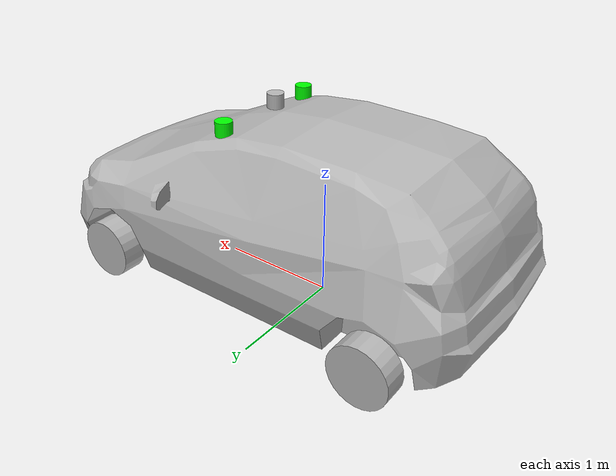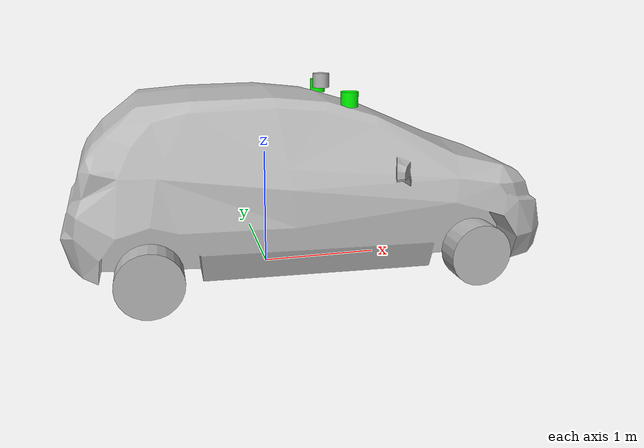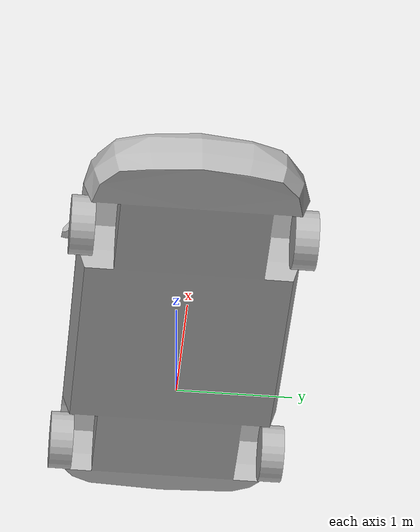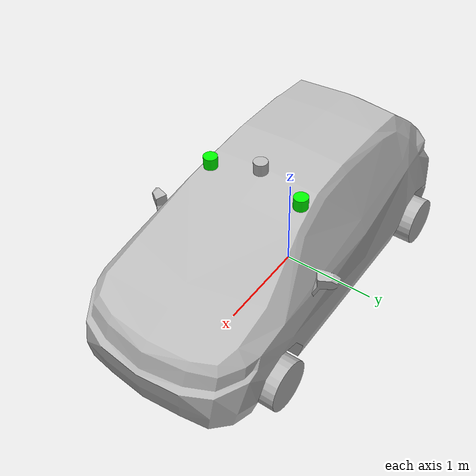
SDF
<?xml version='1.0'?>
<sdf version='1.6'>

<model name="ADcar_model">

	<static>false</static>

	<!-- Load collision properties of ad-car using ad-car mesh -->

  <link name="chassis">
      <collision name="collision">
        <pose>0 0 0.01 0 0 1.5707</pose>
        <geometry>
          <mesh>
            <scale>0.0254 0.0254 0.0254</scale>
            <uri>model://ADcar_model/meshes/hatchback.obj</uri>
          </mesh>
        </geometry>
      </collision>
      <visual name="visual">
        <pose>0 0 0.01 0 0 1.5707</pose>
        <geometry>
          <mesh>
            <scale>0.0254 0.0254 0.0254</scale>
            <uri>model://ADcar_model/meshes/hatchback.obj</uri>
          </mesh>
        </geometry>
      </visual>

      <inertial>
        <mass>1200.0</mass> <!-- in kilograms, adjust for a real car -->
        <inertia>
          <ixx>400.0</ixx>
          <iyy>1200.0</iyy>
          <izz>1400.0</izz>
          <ixy>0.0</ixy>
          <ixz>0.0</ixz>
          <iyz>0.0</iyz>
        </inertia>
      </inertial>

    </link>

	<!--  FRONT right wheel  -->

	<link name="front_right_wheel">
            <pose>1.55 -0.93 0.3 0 1.5707 1.5707</pose>

             <collision name="collision">
          <geometry>
            <cylinder>
              <radius>.25</radius>
              <length>.2</length>
            </cylinder>
          </geometry>

          <surface>
            <friction>
              <ode>
                <mu>1.1</mu>
                <mu2>1.1</mu2>
                <slip1>0.0</slip1>
                <slip2>0.0</slip2>
              </ode>
            </friction>
            <contact>
              <ode>
                <min_depth>0.001</min_depth>
                <kp>1e9</kp>
              </ode>
            </contact>
          </surface>

        </collision>
        <visual name="visual">
          <geometry>
            <cylinder>
              <radius>.25</radius>
              <length>.2</length>
            </cylinder>
          </geometry>
        </visual>
        <inertial>
          <mass>20.0</mass> <!-- wheels are lighter -->
          <inertia>
            <ixx>0.6</ixx>
            <iyy>0.6</iyy>
            <izz>0.6</izz>
          </inertia>
        </inertial>
      </link>

	<!-- FRONT left wheel  -->

	<link name="front_left_wheel">
        <pose>1.55 0.93 0.3 0 1.5707 1.5707</pose>
          <collision name="collision">
          <geometry>
            <cylinder>
              <radius>.25</radius>
              <length>.2</length>
            </cylinder>
          </geometry>

          <surface>
            <friction>
              <ode>
                <mu>1.1</mu>
                <mu2>1.1</mu2>
                <slip1>0.0</slip1>
                <slip2>0.0</slip2>
              </ode>
            </friction>
            <contact>
              <ode>
                <min_depth>0.001</min_depth>
                <kp>1e9</kp>
              </ode>
            </contact>
          </surface>

        </collision>
        <visual name="visual">
          <geometry>
            <cylinder>
              <radius>.25</radius>
              <length>.2</length>
            </cylinder>
          </geometry>
        </visual>
        <inertial>
          <mass>20.0</mass> <!-- wheels are lighter -->
          <inertia>
            <ixx>0.6</ixx>
            <iyy>0.6</iyy>
            <izz>0.6</izz>
          </inertia>
        </inertial>

      </link>

      <link name="front_left_wheel_steer">
        <pose>1.55 0.93 0.3 0 0 0</pose>
        <inertial>
          <mass>1.0</mass>
          <inertia><ixx>0.01</ixx><iyy>0.01</iyy><izz>0.01</izz></inertia>
        </inertial>
      </link>

      <link name="front_right_wheel_steer">
        <pose>1.55 -0.93 0.3 0 0 0</pose>
        <inertial>
          <mass>1.0</mass>
          <inertia><ixx>0.01</ixx><iyy>0.01</iyy><izz>0.01</izz></inertia>
        </inertial>
      </link>

	<!-- REAR Left wheel  -->

	<link name="rear_left_wheel">
        <pose>-1.0 0.93 0.3 0 1.5707 1.5707</pose>
        <collision name="collision">
          <geometry>
            <cylinder>
              <radius>.25</radius>
              <length>.2</length>
            </cylinder>
          </geometry>

          <surface>
            <friction>
              <ode>
                <mu>2.1</mu>
                <mu2>2.1</mu2>
                <slip1>0.0</slip1>
                <slip2>0.0</slip2>
              </ode>
            </friction>
            <contact>
              <ode>
                <min_depth>0.001</min_depth>
                <kp>1e9</kp>
              </ode>
            </contact>
          </surface>

        </collision>
        <visual name="visual">
          <geometry>
            <cylinder>
              <radius>.25</radius>
              <length>.2</length>
            </cylinder>
          </geometry>
        </visual>
        <inertial>
          <mass>20.0</mass> <!-- wheels are lighter -->
          <inertia>
            <ixx>0.6</ixx>
            <iyy>0.6</iyy>
            <izz>0.6</izz>
          </inertia>
        </inertial>
      </link>

	<!-- REAR Right wheel  -->

	<link name="rear_right_wheel">
      <pose>-1.0 -0.93 0.3 0 1.5707 1.5707</pose>
        <collision name="collision">
          <geometry>
            <cylinder>
              <radius>.25</radius>
              <length>.2</length>
            </cylinder>
          </geometry>

          <surface>
            <friction>
              <ode>
                <mu>2.1</mu>
                <mu2>2.1</mu2>
                <slip1>0.0</slip1>
                <slip2>0.0</slip2>
              </ode>
            </friction>
            <contact>
              <ode>
                <min_depth>0.001</min_depth>
                <kp>1e9</kp>

              </ode>
            </contact>
          </surface>
        </collision>

        <visual name="visual">
          <geometry>
            <cylinder>
              <radius>.25</radius>
              <length>.2</length>
            </cylinder>
          </geometry>
        </visual>
        <inertial>
          <mass>20.0</mass> <!-- wheels are lighter -->
          <inertia>
              <ixx>0.6</ixx>
              <iyy>0.6</iyy>
              <izz>0.6</izz>
            </inertia>
        </inertial>
      </link>

	<!-- REAR right and left wheel joints  -->

      <joint type="revolute" name="rear_left_wheel_joint">
       <pose>0 0 0 0 0 0</pose>
        <child>rear_left_wheel</child>
        <parent>chassis</parent>
        <axis>
          <xyz>0 0 1</xyz>
        </axis>
      </joint>

      <joint type="revolute" name="rear_right_wheel_joint">
        <pose>0 0 0 0 0 0</pose>
        <child>rear_right_wheel</child>
        <parent>chassis</parent>
        <axis>
          <xyz>0 0 1</xyz>
        </axis>
      </joint>

<!-- FRONT LEFT WHEEL -->

<!-- Steering joint (same axis as your universal joint axis) -->
<joint name="front_left_steer_joint" type="revolute">
  <parent>chassis</parent>
  <child>front_left_wheel_steer</child>
  <pose>0 0 0 0 0 0</pose>
  <axis>
    <xyz>0 0 1</xyz>  <!-- Keep same steering axis as before -->
    <limit>
      <lower>-0.5</lower>
      <upper>0.5</upper>
    </limit>
  </axis>
</joint>

<!-- Wheel rotation joint (same axis as your universal joint axis2) -->
<joint name="front_left_wheel_joint" type="revolute">
  <parent>front_left_wheel_steer</parent>
  <child>front_left_wheel</child>
  <pose>0 0 0 0 0 0</pose>
  <axis>
    <xyz>0 0 1</xyz>  <!-- Keep same rolling axis as before -->
    <dynamics>
      <friction>0.0474092253</friction>
    </dynamics>
  </axis>
</joint>

<!-- FRONT RIGHT WHEEL -->

<!-- Steering joint -->
<joint name="front_right_steer_joint" type="revolute">
  <parent>chassis</parent>
  <child>front_right_wheel_steer</child>
  <pose>0 0 0 0 0 0</pose>
  <axis>
    <xyz>0 0 1</xyz>  <!-- Keep same steering axis -->
    <limit>
      <lower>-0.5</lower>
      <upper>0.5</upper>
    </limit>
  </axis>
</joint>

<!-- Wheel rotation joint -->
<joint name="front_right_wheel_joint" type="revolute">
  <parent>front_right_wheel_steer</parent>
  <child>front_right_wheel</child>
  <pose>0 0 0 0 0 0</pose>
  <axis>
    <xyz>0 0 1</xyz>  <!-- Keep same rolling axis -->
    <dynamics>
      <friction>0.0474092253</friction>
    </dynamics>
  </axis>
</joint>

 	<!-- PLUGIN for Ackermann steering and drive
Manual publish address for troubleshooting:
ros2 topic pub /ecart/cmd_vel geometry_msgs/msg/Twist '{linear: {x: 1.0}, angular: {z: 0.4}}' -1

-->

	<plugin name='ackermann_drive' filename='libgazebo_ros_ackermann_drive.so'>

        <ros>
          <namespace>ecart</namespace>
          <remapping>cmd_vel:=cmd_vel</remapping>
          <remapping>odom:=odom</remapping>
          <remapping>distance:=distance</remapping>
        </ros>
        <update_rate>25.0</update_rate>
        <!-- wheels -->
        <rear_left_joint>rear_left_wheel_joint</rear_left_joint>
        <rear_right_joint>rear_right_wheel_joint</rear_right_joint>
        <front_left_joint>front_left_wheel_joint</front_left_joint>
        <front_right_joint>front_right_wheel_joint</front_right_joint>
        <left_steering_joint>front_left_steer_joint</left_steering_joint>
        <right_steering_joint>front_right_steer_joint</right_steering_joint>

        <!-- Max absolute steer angle for tyre in radians-->
        <!-- Any cmd_vel angular z greater than this would be capped -->
        <max_steer>0.72</max_steer>          <!-- wheels -->
        <max_steering_angle>0.72</max_steering_angle>  <!-- steering wheel -->

        <!-- Max absolute linear speed in m/s -->
        <max_speed>10</max_speed>

        <!-- limits -->
        <max_wheel_torque>30</max_wheel_torque>

      <!-- PID for using telepkeyboard to drive -->

      <left_steering_pid_gain>800 1 15</left_steering_pid_gain>
      <left_steering_i_range>0 0</left_steering_i_range>
      <right_steering_pid_gain>800 1 15</right_steering_pid_gain>
      <right_steering_i_range>0 0</right_steering_i_range>

      <!-- Linear velocity PID -->
      <linear_velocity_pid_gain>800 0.5 5</linear_velocity_pid_gain>
      <linear_velocity_i_range>0 0</linear_velocity_i_range>

        <!-- output -->
        <publish_odom>false</publish_odom>
        <publish_odom_tf>false</publish_odom_tf>
        <publish_wheel_tf>true</publish_wheel_tf>
        <publish_distance>false</publish_distance>

        <odometry_frame>odom_demo</odometry_frame>
        <robot_base_frame>chassis</robot_base_frame>

      </plugin>

<!-- Camera  -->

     <joint name="camera_joint1" type="fixed">
      <child>cam1</child>
      <parent>chassis</parent>
    </joint>

    <joint name="camera_joint2" type="fixed">
      <child>cam2</child>
      <parent>chassis</parent>
    </joint>

  <!-- LIDAR -->
  <link name="lidar_3d_link">
  <pose>0.5 0 1.6 0 0 0</pose>
  <inertial>
    <mass>0.5</mass>
    <inertia>
      <ixx>0.001</ixx>
      <iyy>0.001</iyy>
      <izz>0.001</izz>
    </inertia>
  </inertial>
  <collision name="collision">
    <geometry>
      <cylinder>
        <radius>0.07</radius>
        <length>0.12</length>
      </cylinder>
    </geometry>
  </collision>
  <visual name="visual">
    <geometry>
      <cylinder>
        <radius>0.07</radius>
        <length>0.12</length>
      </cylinder>
    </geometry>
  </visual>
    <sensor name="solid_lidar" type="gpu_ray">
      <pose>0 0 0 0 0 0</pose>
      <update_rate>10</update_rate>
      <ray>
        <scan>
          <horizontal>
            <samples>2160</samples>
            <resolution>1</resolution>
            <min_angle>-1.5708</min_angle> <!-- -90 deg -->
            <max_angle>1.5708</max_angle>  <!-- +90 deg -->
          </horizontal>
          <vertical>
            <samples>128</samples>
            <resolution>1</resolution>
            <min_angle>-0.2618</min_angle> <!-- -15 deg -->
            <max_angle>0.2618</max_angle>  <!-- +15 deg -->
          </vertical>
        </scan>
        <range>
          <min>0.1</min>
          <max>30.0</max>
          <resolution>0.01</resolution>
        </range>
        <noise>
          <type>gaussian</type>
          <mean>0.0</mean>
          <stddev>0.01</stddev>
        </noise>
      </ray>
      <plugin name="lidar_controller" filename="libgazebo_ros_ray_sensor.so">
        <ros>
          <remapping>~/out:=scan_pointcloud</remapping>
        </ros>
        <output_type>sensor_msgs/PointCloud2</output_type>
        <frame_name>base_scan</frame_name>
        <alwaysOn>1</alwaysOn>
        <visualize>true</visualize>
      </plugin>
  </sensor>
</link>

<joint name="lidar_3d_joint" type="fixed">
  <parent>chassis</parent>
  <child>lidar_3d_link</child>
</joint>

<!-- far_left LIDAR LINK -->
<link name="lidar_3d_far_left_link">
  <pose>0.6 0.5 1.5 0 0 0</pose>
  <!-- visual for testing -->
  <visual name="visual">
    <geometry>
      <cylinder>
        <radius>0.07</radius>
        <length>0.12</length>
      </cylinder>
    </geometry>
    <material>
      <ambient>0 1 0 1</ambient>
      <diffuse>0 1 0 1</diffuse>
    </material>
  </visual>
  <inertial>
    <mass>0.5</mass>
    <inertia>
      <ixx>0.001</ixx>
      <iyy>0.001</iyy>
      <izz>0.001</izz>
    </inertia>
  </inertial>
  <!-- far_left LIDAR SENSOR -->
  <sensor name="solid_lidar_far_left" type="gpu_ray">
    <pose>0 0 0 0 0 0</pose>
    <update_rate>5</update_rate>
    <ray>
      <scan>
        <horizontal>
          <samples>2160</samples>
          <resolution>1</resolution>
            <min_angle>-0.523599</min_angle> <!-- -30 deg -->
            <max_angle>0.523599</max_angle>  <!-- +30 deg -->
        </horizontal>
        <vertical>
          <samples>256</samples>
          <resolution>1</resolution>
            <min_angle>-0.523599</min_angle> <!-- -30 deg -->
            <max_angle>0.523599</max_angle>  <!-- +30 deg -->
        </vertical>
      </scan>
      <range>
        <min>0.2</min>
        <max>100.0</max>
        <resolution>0.01</resolution>
      </range>
      <noise>
        <type>gaussian</type>
        <mean>0.0</mean>
        <stddev>0.01</stddev>
      </noise>
    </ray>
    <plugin name="lidar_controller_far_left" filename="libgazebo_ros_ray_sensor.so">
      <ros>
        <remapping>~/out:=/scan_pointcloud_far_left</remapping>
      </ros>
      <output_type>sensor_msgs/PointCloud2</output_type>
      <frame_name>base_scan_far_left</frame_name>
      <alwaysOn>1</alwaysOn>
      <visualize>true</visualize>
    </plugin>
  </sensor>
</link>

<!-- JOINT connecting far_left LIDAR to chassis -->
<joint name="lidar_3d_far_left_joint" type="fixed">
  <parent>chassis</parent>
  <child>lidar_3d_far_left_link</child>
</joint>

<!-- FAR RIGHT LIDAR LINK -->
<link name="lidar_3d_far_right_link">
  <pose>0.6 -0.5 1.5 0 0 0</pose>
  <!-- visual for testing -->
  <visual name="visual">
    <geometry>
      <cylinder>
        <radius>0.07</radius>
        <length>0.12</length>
      </cylinder>
    </geometry>
    <material>
      <ambient>0 1 0 1</ambient>
      <diffuse>0 1 0 1</diffuse>
    </material>
  </visual>
  <inertial>
    <mass>0.5</mass>
    <inertia>
      <ixx>0.001</ixx>
      <iyy>0.001</iyy>
      <izz>0.001</izz>
    </inertia>
  </inertial>
  <!-- far_right LIDAR SENSOR -->
  <sensor name="solid_lidar_far_right" type="gpu_ray">
    <pose>0 0 0 0 0 0</pose>
    <update_rate>5</update_rate>
    <ray>
      <scan>
        <horizontal>
          <samples>2160</samples>
          <resolution>1</resolution>
            <min_angle>-0.523599</min_angle> <!-- -30 deg -->
            <max_angle>0.523599</max_angle>  <!-- +30 deg -->
        </horizontal>
        <vertical>
          <samples>256</samples>
          <resolution>1</resolution>
            <min_angle>-0.523599</min_angle> <!-- -30 deg -->
            <max_angle>0.523599</max_angle>  <!-- +30 deg -->
        </vertical>
      </scan>
      <range>
        <min>0.2</min>
        <max>100.0</max>
        <resolution>0.01</resolution>
      </range>
      <noise>
        <type>gaussian</type>
        <mean>0.0</mean>
        <stddev>0.01</stddev>
      </noise>
    </ray>
    <plugin name="lidar_controller_far_right" filename="libgazebo_ros_ray_sensor.so">
      <ros>
        <remapping>~/out:=/scan_pointcloud_far_right</remapping>
      </ros>
      <output_type>sensor_msgs/PointCloud2</output_type>
      <frame_name>base_scan_far_right</frame_name>
      <alwaysOn>1</alwaysOn>
      <visualize>true</visualize>
    </plugin>
  </sensor>
</link>

<!-- JOINT connecting far_right LIDAR to chassis -->
<joint name="lidar_3d_far_right_joint" type="fixed">
  <parent>chassis</parent>
  <child>lidar_3d_far_right_link</child>
</joint>

	<!-- Lights -->

	<link name="light1">
 		<pose>1.8 0.4 .7 0 1.5 0</pose>

 	 	<light type="sun" name="light1">
    	<cast_shadows>false</cast_shadows>

    	<diffuse>0.8 0.8 0.8 1</diffuse>
    	<specular>0.1 0.1 0.1 1</specular>

    		<attenuation>
      			<range>1000</range>
      			<constant>0.9</constant>
      			<linear>0.01</linear>
      			<quadratic>0.001</quadratic>
    	</attenuation>

		<direction>-0.5 0.5 -1.0</direction>
  		</light>
	</link>

    <joint name="light1_joint" type="fixed">
      <child>light1</child>
      <parent>chassis</parent>
    </joint>

	<!-- Lights -->

	<link name="light2">
 		<pose>1.8 -0.4 .7 0 1.5 0</pose>

 	 <light type="sun" name="light2">
    <cast_shadows>false</cast_shadows>

    <diffuse>0.8 0.8 0.8 1</diffuse>
    <specular>0.1 0.1 0.1 1</specular>

    <attenuation>
      	<range>1000</range>
      	<constant>0.9</constant>
      	<linear>0.01</linear>
      	<quadratic>0.001</quadratic>
    	</attenuation>

		<direction>-0.5 0.5 -1.0</direction>
  		</light>
	</link>

    <joint name="light2_joint" type="fixed">
      <child>light2</child>
      <parent>chassis</parent>
    </joint>

	<!-- Lights -->
	<link name="light3">
 		<pose>1.8 0 .7 0 1.5 0</pose>

 	 	<light type="sun" name="light2">
    		<cast_shadows>false</cast_shadows>

    		<diffuse>0.8 0.8 0.8 1</diffuse>
    		<specular>0.1 0.1 0.1 1</specular>

    			<attenuation>
      				<range>1000</range>
      				<constant>0.9</constant>
      				<linear>0.01</linear>
      				<quadratic>0.001</quadratic>
    			</attenuation>

			<direction>-0.5 0.5 -1.0</direction>
  		</light>
	</link>

    <joint name="light3_joint" type="fixed">
      <child>light3</child>
      <parent>chassis</parent>
    </joint>

</model>

</sdf>
